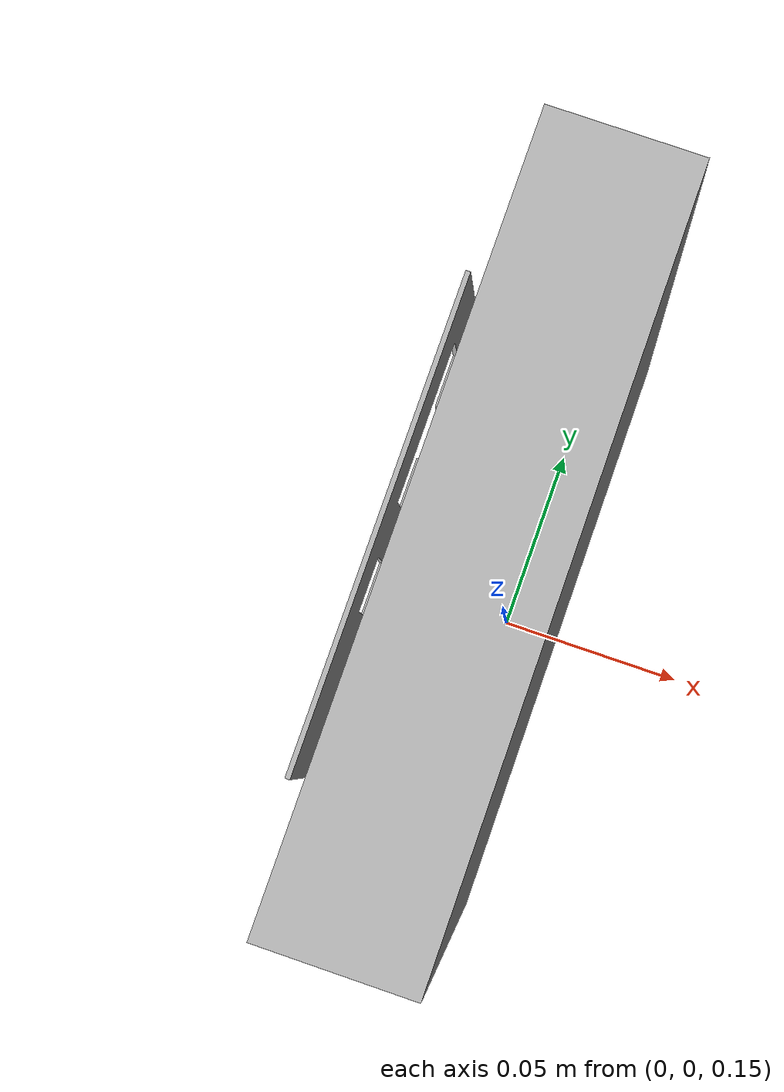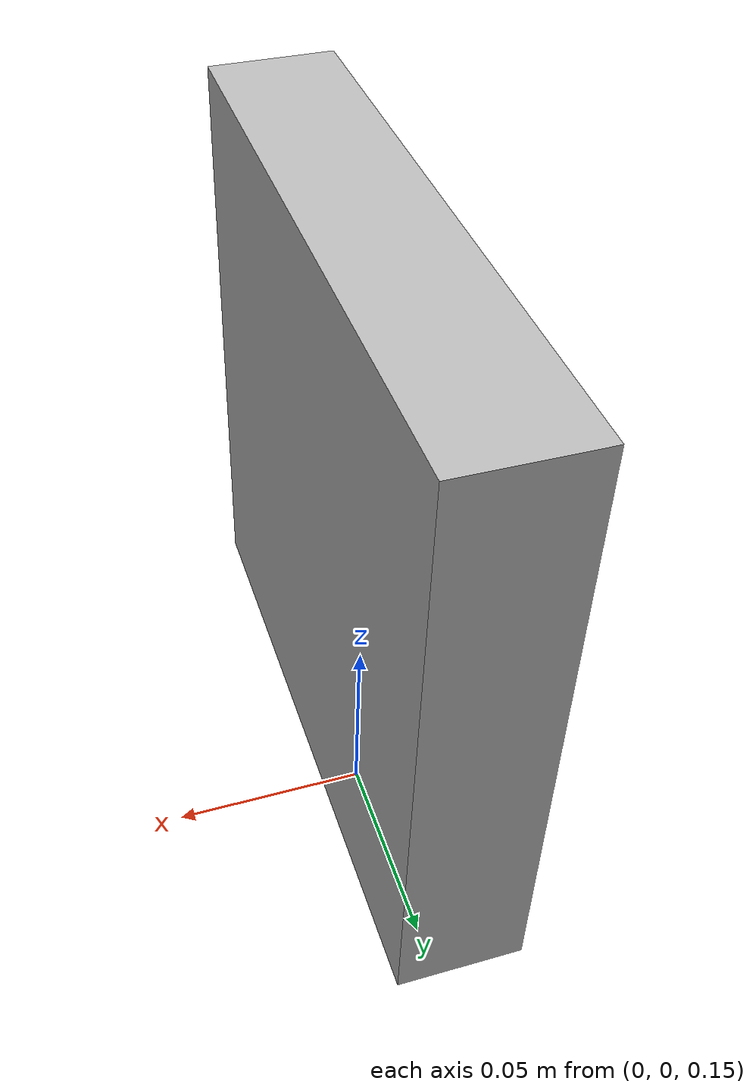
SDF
<?xml version='1.0'?>
<sdf version="1.4">
  <model name="build">
    <include>
      <uri>../sdf/aruco.sdf</uri>
    </include>

    <include>
      <uri>../sdf/aruco_base.sdf</uri>
    </include>

    <joint name="joint_00" type="fixed">
      <parent>box1::link</parent>
      <child>aruco1::aruco1</child>
      <pose>0 0 0 0.0 0.0 0.0</pose>
    </joint>
  </model>
</sdf>

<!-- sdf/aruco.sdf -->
<sdf version="1.4">
  <model name="aruco1">
      <pose>-0.022 -0.05 0.3 0 1.57 0</pose>
      <static>true</static>
      <link name="aruco1">
        <visual name="aruco1_vis">
          <geometry>
            <mesh>
              <uri>/home/anyone/autonomous_f1tenth/src/f1tenth/f1tenth_description/meshes/aruco.stl</uri>
              <scale>0.001 0.001 0.001</scale>
            </mesh>
          </geometry>
        </visual>
      </link>
    </model>
</sdf>

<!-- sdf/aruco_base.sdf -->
<sdf version="1.4">
  <model name="box1">
      <pose>0 0 0.25 0 0 0</pose>
      <static>true</static>
      <link name="link">
        <inertial>
          <mass>0.001</mass>
          <inertia> <!-- inertias are tricky to compute -->
            <!-- http://gazebosim.org/tutorials?tut=inertia&cat=build_robot -->
            <ixx>0.083</ixx>       <!-- for a box: ixx = 0.083 * mass * (y*y + z*z) -->
            <ixy>0.0</ixy>         <!-- for a box: ixy = 0 -->
            <ixz>0.0</ixz>         <!-- for a box: ixz = 0 -->
            <iyy>0.083</iyy>       <!-- for a box: iyy = 0.083 * mass * (x*x + z*z) -->
            <iyz>0.0</iyz>         <!-- for a box: iyz = 0 -->
            <izz>0.083</izz>       <!-- for a box: izz = 0.083 * mass * (x*x + y*y) -->
          </inertia>
        </inertial>
        <collision name="collision">
          <geometry>
            <box>
              <size>0.03 0.15 0.15</size>
            </box>
          </geometry>
        </collision>
        <visual name="visual">
          <geometry>
            <box>
              <size>0.03 0.15 0.15</size>
            </box>
          </geometry>
        </visual>
    </link>
  </model>
</sdf>
